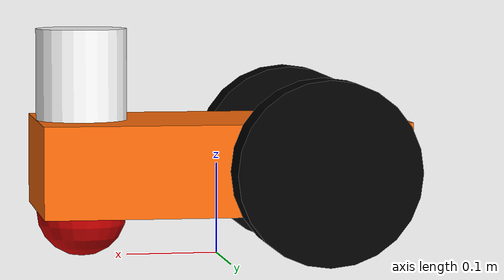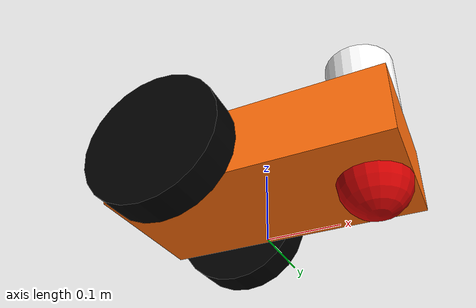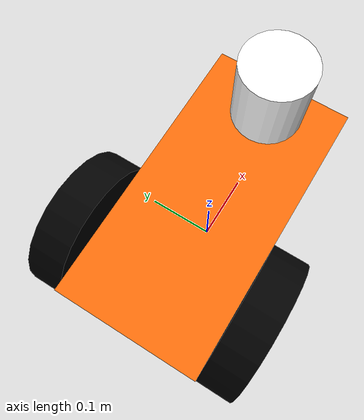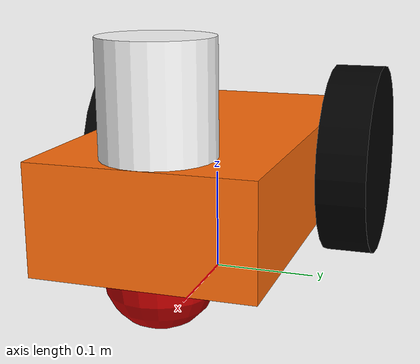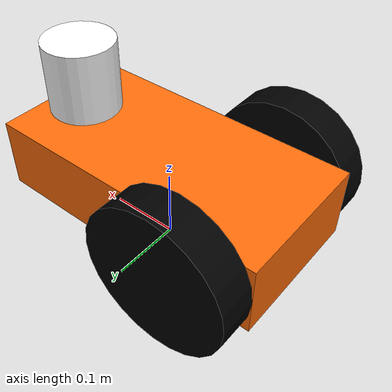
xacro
<?xml version="1.0"?>
<robot name="diff_drive" xmlns:xacro="http://www.ros.org/wiki/xacro">
<xacro:include filename="$(find diff_drive_description)/urdf/diff_drive.gazebo" />
<xacro:include filename="$(find diff_drive_description)/urdf/materials.xacro" />
<xacro:include filename="$(find diff_drive_description)/urdf/macros.xacro" />

<xacro:property name="PI" value="3.1415926535897931"/>

<xacro:property name="chassisHeight" value="0.1"/>
<xacro:property name="chassisLength" value="0.4"/>
<xacro:property name="chassisWidth" value="0.2"/>
<xacro:property name="chassisMass" value="50"/>

<xacro:property name="casterRadius" value="0.05"/>
<xacro:property name="casterMass" value="5"/>

<xacro:property name="wheelWidth" value="0.05"/>
<xacro:property name="wheelRadius" value="0.1"/>
<xacro:property name="wheelPos" value="${wheelRadius}"/>
<xacro:property name="wheelMass" value="5"/>

<xacro:property name="laserHeight" value="0.1"/>
<xacro:property name="laserRadius" value="0.05"/>
<xacro:property name="laserMass" value="0.1"/>

<!-- base joint -->
<link name="base_link"/>

<joint name="base_joint" type="fixed">
	<parent link="base_link"/>
	<child link="chassis"/>
</joint>

<!-- chassis -->
<link name="chassis">
<collision>
	<origin xyz="0 0 ${wheelRadius}" rpy="0 0 0"/>
	<geometry>
		<box size="${chassisLength} ${chassisWidth} ${chassisHeight}"/>
	</geometry>
</collision>
<visual>
	<origin xyz="0 0 ${wheelRadius}" rpy="0 0 0"/>
	<geometry>
		<box size="${chassisLength} ${chassisWidth} ${chassisHeight}"/>
	</geometry>
	<material name="orange"/>
</visual>
<inertial>
	<origin xyz="0 0 ${wheelRadius}" rpy="0 0 0"/>
	<mass value="${chassisMass}"/>
	<box_inertia m="${chassisMass}" x="${chassisLength}" y="${chassisWidth}" z="${chassisHeight}"/>
</inertial>
</link>

<!-- caster wheel -->
<joint name="fixed" type="fixed">
  <parent link="chassis"/>
  <child link="caster_wheel"/>
</joint>

<link name="caster_wheel">
  <collision>
    <origin xyz="${chassisLength/2-casterRadius} 0 ${casterRadius-chassisHeight+wheelRadius}" rpy="0 0 0"/>
    <geometry>
      <sphere radius="${casterRadius}"/>
    </geometry>
  </collision>

  <visual>
    <origin xyz="${chassisLength/2-casterRadius} 0 ${casterRadius-chassisHeight+wheelRadius}" rpy="0 0 0"/>
    <geometry>
      <sphere radius="${casterRadius}"/>
    </geometry>
    <material name="red"/>
  </visual>

  <inertial>
    <origin xyz="${chassisLength/2-casterRadius} 0 ${casterRadius-chassisHeight+wheelRadius}" rpy="0 0 0"/>
    <mass value="${casterMass}"/>
    <sphere_inertia m="${casterMass}" r="${casterRadius}"/>
  </inertial>
</link>

<!-- main wheels -->
<wheel lr="left" tY="1"/>
<wheel lr="right" tY="-1"/>

<!-- laser sensor -->
<link name="hokuyo_link">
	<collision>
		<origin xyz="0 0 0" rpy="0 0 0"/>
		<geometry>
			<cylinder radius="${laserRadius}" length="${laserHeight}"/>
		</geometry>
	</collision>
	<visual>
		<origin xyz="0 0 0" rpy="0 0 0"/>
		<geometry>
			<cylinder radius="${laserRadius}" length="${laserHeight}"/>
		</geometry>
		<material name="white"/>
	</visual>
	<inertial>
		<origin xyz="0 0 0" rpy="0 0 0"/>
		<mass value="${laserMass}"/>
		<cylinder_inertia m="${laserMass}" r="${laserRadius}" h="${laserHeight}"/>
	</inertial>
</link>

<joint name="hokuyo_joint" type="fixed">
	<axis xyz="0 1 0"/>
	<origin xyz="${chassisLength/2-casterRadius} 0 ${chassisHeight+wheelRadius}" rpy="0 0 0"/>
	<parent link="base_link"/>
	<child link="hokuyo_link"/>
</joint>

</robot>

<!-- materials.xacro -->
<robot name="diff_drive" xmlns:xacro="http://www.ros.org/wiki/xacro">
<material name="black">
  <color rgba="0.0 0.0 0.0 1.0"/>
</material>

<material name="blue">
  <color rgba="0.0 0.0 0.8 1.0"/>
</material>

<material name="green">
  <color rgba="0.0 0.8 0.0 1.0"/>
</material>

<material name="grey">
  <color rgba="0.2 0.2 0.2 1.0"/>
</material>

<material name="orange">
  <color rgba="${255/255} ${108/255} ${10/255} 1.0"/>
</material>

<material name="brown">
  <color rgba="${222/255} ${207/255} ${195/255} 1.0"/>
</material>

<material name="red">
  <color rgba="0.8 0.0 0.0 1.0"/>
</material>

<material name="white">
  <color rgba="1.0 1.0 1.0 1.0"/>
</material>
</robot>

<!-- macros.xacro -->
<robot name="diff_drive" xmlns:xacro="http://www.ros.org/wiki/xacro">

<macro name="cylinder_inertia" params="m r h">
	<inertia
	ixx="${m*(3*r*r+h*h)/12}" ixy = "0" ixz = "0"
    iyy="${m*(3*r*r+h*h)/12}" iyz = "0"
    izz="${m*r*r/2}"
	/>
</macro>

<macro name="box_inertia" params="m x y z">
	<inertia
	ixx="${m*(y*y+z*z)/12}" ixy = "0" ixz = "0"
    iyy="${m*(x*x+z*z)/12}" iyz = "0"
    izz="${m*(x*x+z*z)/12}"
	/>
</macro>

<macro name="sphere_inertia" params="m r">
	<inertia
	ixx="${2*m*r*r/5}" ixy = "0" ixz = "0"
    iyy="${2*m*r*r/5}" iyz = "0"
    izz="${2*m*r*r/5}"
	/>
</macro>

<macro name="wheel" params="lr tY">

<link name="${lr}_wheel">
  <collision>
    <origin xyz="0 0 0" rpy="0 ${PI/2} ${PI/2}" />
    <geometry>
      <cylinder length="${wheelWidth}" radius="${wheelRadius}"/>
    </geometry>
  </collision>

  <visual>
    <origin xyz="0 0 0" rpy="0 ${PI/2} ${PI/2}" />
    <geometry>
      <cylinder length="${wheelWidth}" radius="${wheelRadius}"/>
    </geometry>
    <material name="black"/>
  </visual>

  <inertial>
    <origin xyz="0 0 0" rpy="0 ${PI/2} ${PI/2}" />
    <mass value="${wheelMass}"/>
    <cylinder_inertia m="${wheelMass}" r="${wheelRadius}" h="${wheelWidth}"/>
  </inertial>
</link>

<gazebo reference="${lr}_wheel">
  <mu1 value="1.0"/>
  <mu2 value="1.0"/>
  <kp  value="10000000.0" />
  <kd  value="1.0" />
  <fdir1 value="1 0 0"/>
  <material>Gazebo/Black</material>
</gazebo>

<joint name="${lr}_wheel_hinge" type="continuous">
  <parent link="chassis"/>
  <child link="${lr}_wheel"/>
<origin xyz="${wheelPos-chassisLength/2} ${tY*wheelWidth/2+tY*chassisWidth/2} ${wheelRadius}" rpy="0 0 0" />
  <axis xyz="0 1 0" rpy="0 0 0" />
  <limit effort="100" velocity="100"/>
  <joint_properties damping="0.0" friction="0.0"/>
</joint>

<transmission name="${lr}_trans">
  <type>transmission_interface/SimpleTransmission</type>
  <joint name="${lr}_wheel_hinge"/>
  <actuator name="${lr}Motor">
    <hardwareInterface>EffortJointInterface</hardwareInterface>
    <mechanicalReduction>10</mechanicalReduction>
  </actuator>
</transmission>

</macro>

</robot>
